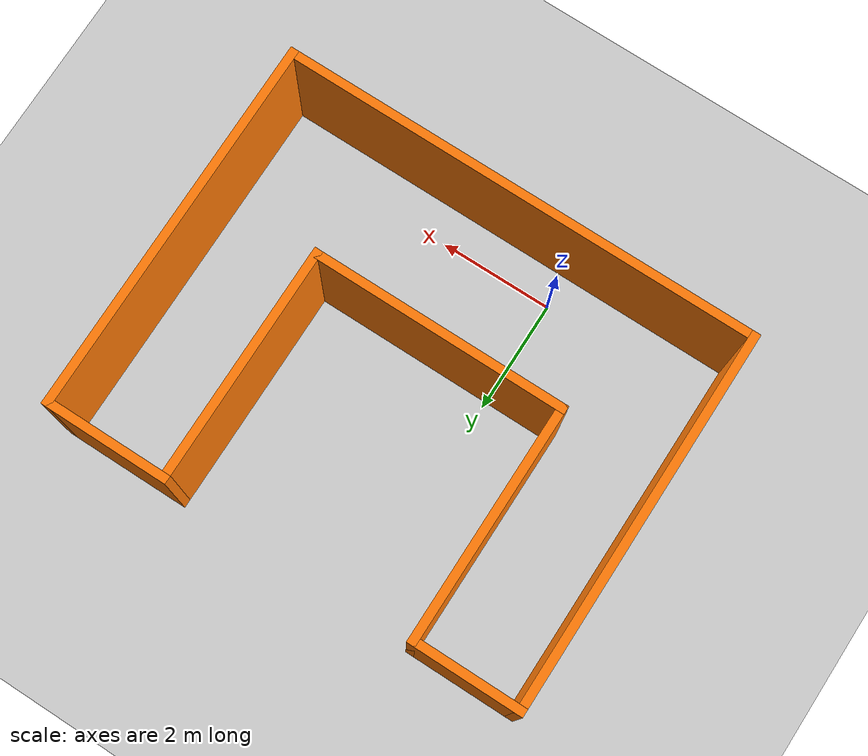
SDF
<sdf version="1.6">
 <world name="default">
  <light name="sun" type="directional">
   <pose>0 0 15 0 -0 0</pose>
   <diffuse>1 1 1 1</diffuse>
   <specular>0.1 0.1 0.1 1</specular>
   <attenuation>
    <range>1000</range>
    <constant>0.9</constant>
    <linear>0.01</linear>
    <quadratic>0.001</quadratic>
   </attenuation>
   <direction>-0.5 0.5 -1</direction>
  </light>
  <model name="ground_plane">
   <static>1</static>
   <link name="link">
    <collision name="collision">
     <geometry><plane><normal>0 0 1</normal><size>100 100</size></plane></geometry>
     <surface><friction><ode><mu>100</mu><mu2>50</mu2></ode></friction></surface>
    </collision>
    <visual name="visual">
     <transparency>1</transparency>
     <cast_shadows>0</cast_shadows>
     <geometry><plane><normal>0 0 1</normal><size>100 100</size></plane></geometry>
     <material>
      <script><uri>file://media/materials/scripts/gazebo.material</uri><name>Gazebo/Grey</name></script>
     </material>
    </visual>
   </link>
  </model>
  <gravity>0 0 -9.8</gravity>
  <magnetic_field>6e-06 2.3e-05 -4.2e-05</magnetic_field>
  <atmosphere type="adiabatic"/>
  <physics name="default_physics" default="0" type="ode">
   <max_step_size>0.001</max_step_size>
   <real_time_factor>1</real_time_factor>
   <real_time_update_rate>1000</real_time_update_rate>
  </physics>
  <scene><ambient>0.4 0.4 0.4 1</ambient><background>0.7 0.7 0.7 1</background><shadows>1</shadows></scene>
  <spherical_coordinates>
   <surface_model>EARTH_WGS84</surface_model>
   <latitude_deg>0</latitude_deg>
   <longitude_deg>0</longitude_deg>
   <elevation>0</elevation>
   <heading_deg>0</heading_deg>
  </spherical_coordinates>
  <model name="simple_maze">
   <pose>1.14935 2.62128 0 0 -0 0</pose>
   <link name="Wall_0">
    <collision name="Wall_0_Collision">
     <geometry><box><size>2 0.15 2.5</size></box></geometry>
     <pose>0 0 1.25 0 -0 0</pose>
    </collision>
    <visual name="Wall_0_Visual">
     <pose>0 0 1.25 0 -0 0</pose>
     <geometry><box><size>2 0.15 2.5</size></box></geometry>
     <material>
      <script><uri>file://media/materials/scripts/gazebo.material</uri><name>Gazebo/Grey</name></script>
      <ambient>0.996078 0.47451 0.0196078 1</ambient>
     </material>
    </visual>
    <pose>-3.25 3.3 0 0 -0 0</pose>
   </link>
   <link name="Wall_1">
    <collision name="Wall_1_Collision">
     <geometry><box><size>4.25 0.15 2.5</size></box></geometry>
     <pose>0 0 1.25 0 -0 0</pose>
    </collision>
    <visual name="Wall_1_Visual">
     <pose>0 0 1.25 0 -0 0</pose>
     <geometry><box><size>4.25 0.15 2.5</size></box></geometry>
     <material>
      <script><uri>file://media/materials/scripts/gazebo.material</uri><name>Gazebo/Grey</name></script>
      <ambient>0.996078 0.47451 0.0196078 1</ambient>
     </material>
    </visual>
    <pose>-2.325 1.25 0 0 0 -1.5708</pose>
   </link>
   <link name="Wall_3">
    <collision name="Wall_3_Collision">
     <geometry><box><size>6.75 0.15 2.5</size></box></geometry>
     <pose>0 0 1.25 0 -0 0</pose>
    </collision>
    <visual name="Wall_3_Visual">
     <pose>0 0 1.25 0 -0 0</pose>
     <geometry><box><size>6.75 0.15 2.5</size></box></geometry>
     <material>
      <script><uri>file://media/materials/scripts/gazebo.material</uri><name>Gazebo/Grey</name></script>
      <ambient>0.996078 0.47451 0.0196078 1</ambient>
     </material>
    </visual>
    <pose>-4.175 0 0 0 0 -1.5708</pose>
   </link>
   <link name="Wall_4">
    <collision name="Wall_4_Collision">
     <geometry><box><size>8.5 0.15 2.5</size></box></geometry>
     <pose>0 0 1.25 0 -0 0</pose>
    </collision>
    <visual name="Wall_4_Visual">
     <pose>0 0 1.25 0 -0 0</pose>
     <geometry><box><size>8.5 0.15 2.5</size></box></geometry>
     <material>
      <script><uri>file://media/materials/scripts/gazebo.material</uri><name>Gazebo/Grey</name></script>
      <ambient>0.996078 0.47451 0.0196078 1</ambient>
     </material>
    </visual>
    <pose>0 -3.3 0 0 -0 0</pose>
   </link>
   <link name="Wall_5">
    <collision name="Wall_5_Collision">
     <geometry><box><size>6.75 0.15 2.5</size></box></geometry>
     <pose>0 0 1.25 0 -0 0</pose>
    </collision>
    <visual name="Wall_5_Visual">
     <pose>0 0 1.25 0 -0 0</pose>
     <geometry><box><size>6.75 0.15 2.5</size></box></geometry>
     <material>
      <script><uri>file://media/materials/scripts/gazebo.material</uri><name>Gazebo/Grey</name></script>
      <ambient>0.996078 0.47451 0.0196078 1</ambient>
     </material>
    </visual>
    <pose>4.175 0 0 0 -0 1.5708</pose>
   </link>
   <link name="Wall_6">
    <collision name="Wall_6_Collision">
     <geometry><box><size>2.25 0.15 2.5</size></box></geometry>
     <pose>0 0 1.25 0 -0 0</pose>
    </collision>
    <visual name="Wall_6_Visual">
     <pose>0 0 1.25 0 -0 0</pose>
     <geometry><box><size>2.25 0.15 2.5</size></box></geometry>
     <material>
      <script><uri>file://media/materials/scripts/gazebo.material</uri><name>Gazebo/Grey</name></script>
      <ambient>0.996078 0.47451 0.0196078 1</ambient>
     </material>
    </visual>
    <pose>3.125 3.3 0 0 -0 3.14159</pose>
   </link>
   <link name="Wall_7">
    <collision name="Wall_7_Collision">
     <geometry><box><size>4.25 0.15 2.5</size></box></geometry>
     <pose>0 0 1.25 0 -0 0</pose>
    </collision>
    <visual name="Wall_7_Visual">
     <pose>0 0 1.25 0 -0 0</pose>
     <geometry><box><size>4.25 0.15 2.5</size></box></geometry>
     <material>
      <script><uri>file://media/materials/scripts/gazebo.material</uri><name>Gazebo/Grey</name></script>
      <ambient>0.996078 0.47451 0.0196078 1</ambient>
     </material>
    </visual>
    <pose>2.075 1.25 0 0 0 -1.5708</pose>
   </link>
   <link name="Wall_8">
    <collision name="Wall_8_Collision">
     <geometry><box><size>4.55 0.15 2.5</size></box></geometry>
     <pose>0 0 1.25 0 -0 0</pose>
    </collision>
    <visual name="Wall_8_Visual">
     <pose>0 0 1.25 0 -0 0</pose>
     <geometry><box><size>4.55 0.15 2.5</size></box></geometry>
     <material>
      <script><uri>file://media/materials/scripts/gazebo.material</uri><name>Gazebo/Grey</name></script>
      <ambient>0.996078 0.47451 0.0196078 1</ambient>
     </material>
    </visual>
    <pose>-0.125 -0.8 0 0 -0 3.14159</pose>
   </link>
   <static>1</static>
  </model>
 </world>
</sdf>
